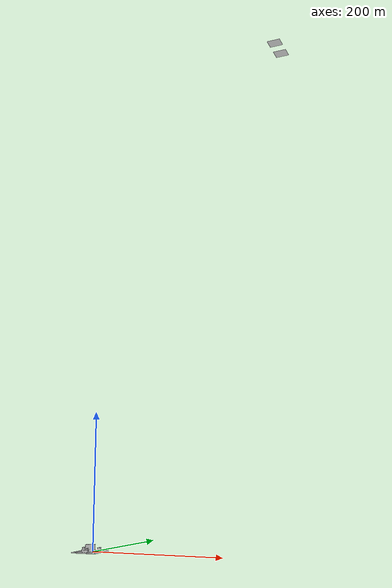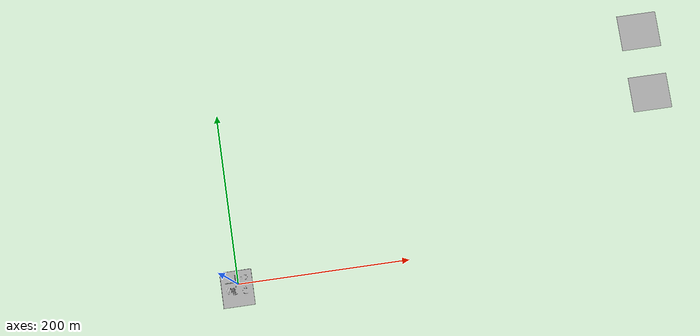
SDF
<?xml version='1.0'?>
<sdf version='1.6'>
  <model name='town1'>
    <link name='link_1'>
         <visual name='visual'>
        <pose frame=''>0 0 0 0 -0 0</pose>
        <geometry>
          <mesh>
            <uri>model://town1/meshes/town1_sp.dae</uri>
            <scale>1.0 1.0 1.0</scale>
          </mesh>
        </geometry>
        <cast_shadows>0</cast_shadows>
        <transparency>0</transparency>
      </visual>
      <collision name='collision'>
        <laser_retro>0</laser_retro>
        <max_contacts>10</max_contacts>
        <pose frame=''>0 0 0 0 -0 0</pose>
        <geometry>
          <mesh>
            <uri>model://town1/meshes/town1_nofloor.stl</uri>
            <scale>1.0 1.0 1.0</scale>
          </mesh>
        </geometry>
     </collision>
    </link>

    <static>1</static>
    <allow_auto_disable>1</allow_auto_disable>
  </model>
</sdf>
